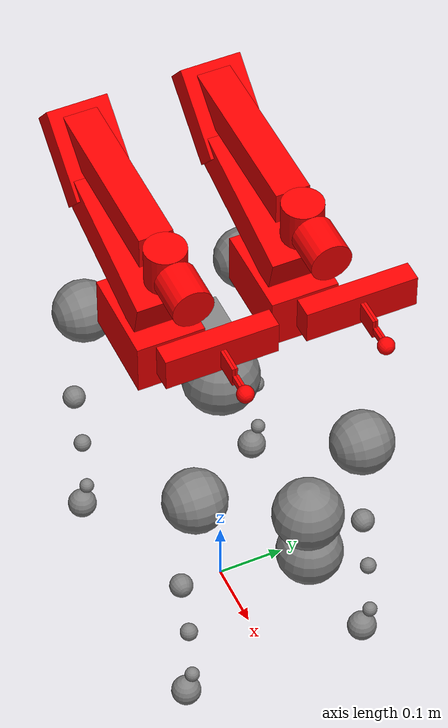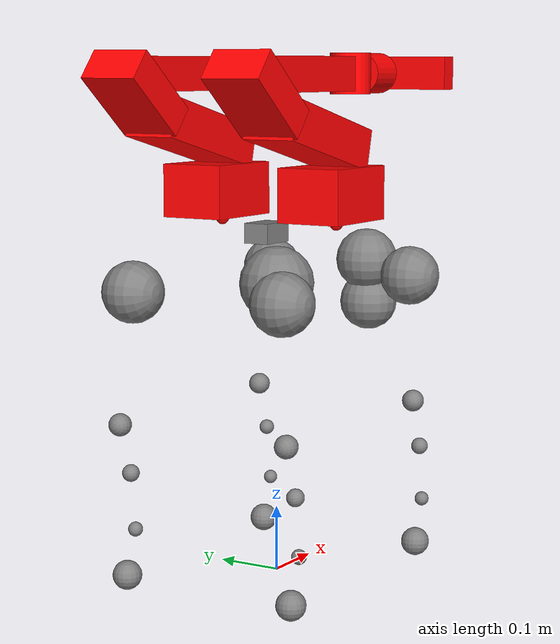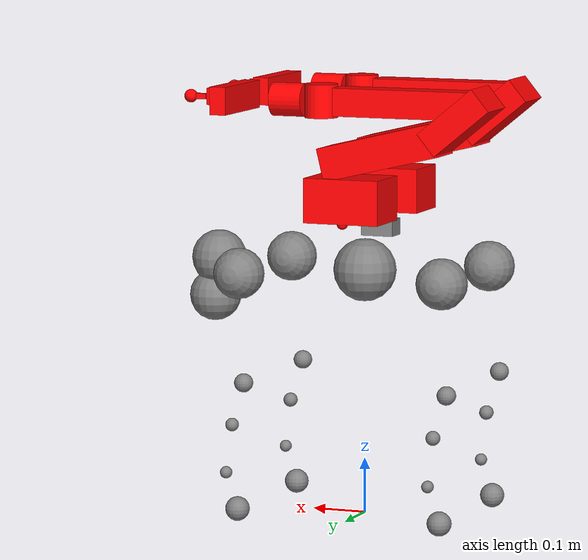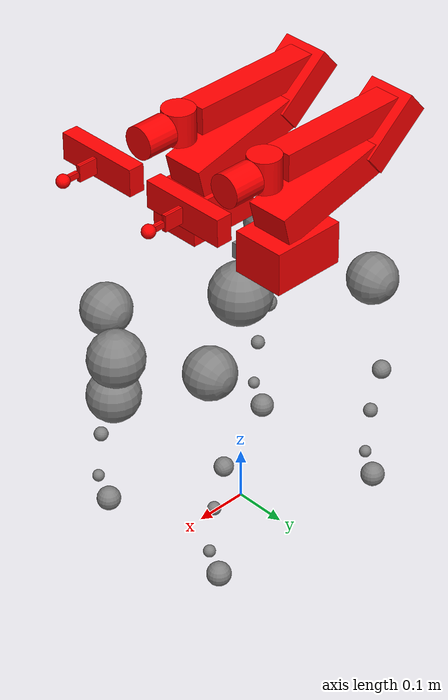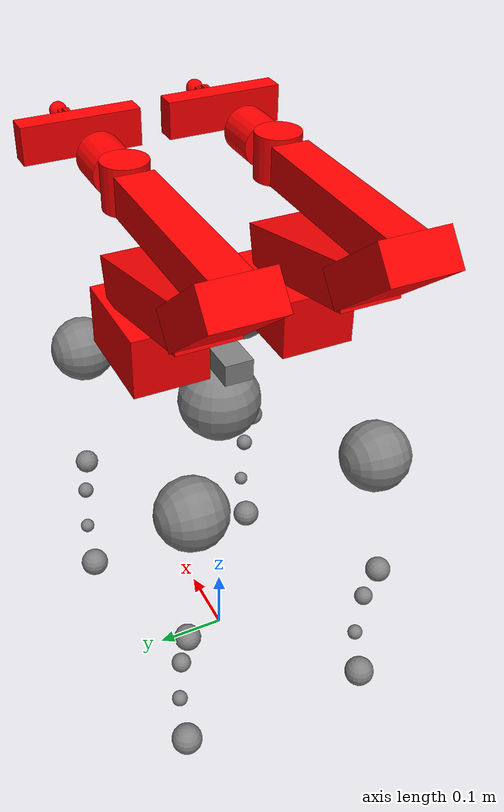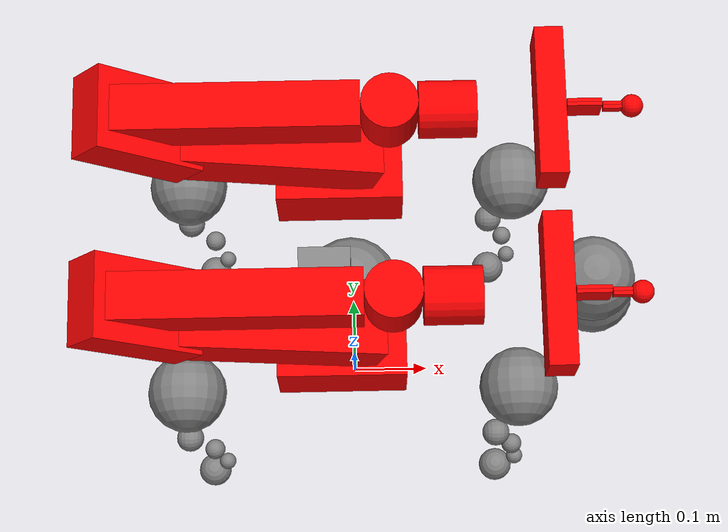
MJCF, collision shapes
<mujoco model="go2_dual_arm">
  <compiler angle="radian" meshdir="." autolimits="true" />

  <!-- 求解器solver:默认牛顿 -->
  <option iterations="1" ls_iterations="5" timestep="0.004" integrator="Euler">
    <flag eulerdamp="disable" />
  </option>

  <custom>
    <numeric data="50" name="max_contact_points" />
    <numeric data="24" name="max_geom_pairs" />
  </custom>

  <default>
    <default class="obj_visual">
      <geom group="2" type="mesh" contype="0" conaffinity="0" />
    </default>
    <default class="obj_collision">
      <geom group="3" contype="1" conaffinity="1" />
    </default>

    <default class="airbot_play">
      <joint axis="0 0 1" armature="0.01" damping="1" frictionloss="5" />
      <position inheritrange="1" kp="35" forcerange="-18 18" />
      <default class="joint1">
        <joint range="-3.1416 2.0944" actuatorfrcrange="-24 24" damping="0.2" frictionloss="1" />
      </default>
      <default class="joint2">
        <joint range="-2.9671 0.17453" actuatorfrcrange="-24 24" damping="0.2" frictionloss="1" />
      </default>
      <default class="joint3">
        <joint range="-0.087266 3.1416" actuatorfrcrange="-24 24" damping="0.2" frictionloss="1" />
      </default>
      <default class="joint4">
        <joint range="-3.0107 3.0107" actuatorfrcrange="-8 8" damping="0.1" frictionloss="0.5" />
        <position forcerange="-8 8" />
      </default>
      <default class="joint5">
        <joint range="-1.7628 1.7628" actuatorfrcrange="-8 8" damping="0.1" frictionloss="0.5" />
        <position forcerange="-8 8" />
      </default>
      <default class="joint6">
        <joint range="-3.0107 3.0107" actuatorfrcrange="-8 8" damping="0.1" frictionloss="0.5" />
        <position forcerange="-8 8" />
      </default>
    </default>

    <default class="go2">
      <geom friction="0.6" margin="0.001" condim="1" />
      <joint axis="0 1 0" damping="0.5" armature="0.01" frictionloss="0.2" />
      <general forcerange="-24 24" biastype="affine" gainprm="50 0 0" biasprm="0 -50 -0.5" />

      <default class="abduction">
        <joint axis="1 0 0" range="-1.0472 1.0472" />
        <general ctrlrange="-0.9472 0.9472" />
      </default>
      <default class="hip">
        <joint range="-1.5708 3.4907" />
        <general ctrlrange="-1.4 2.5" />
      </default>
      <default class="knee">
        <joint range="-2.7227 -0.83776" />
        <general ctrlrange="-2.6227 -0.84776" />
      </default>
      <default class="visual">
        <geom type="mesh" contype="0" conaffinity="0" group="2" />
      </default>
      <default class="go2foot">
        <site pos="0 0 -0.213" type="sphere" size="0.023" group="5" />
        <geom rgba="0.231373 0.380392 0.705882 1" />
      </default>
      <default class="collision">
        <geom group="3" />
        <default class="foot">
          <geom size="0.022" pos="-0.002 0 -0.213" priority="1" solimp="0.015 1 0.022" condim="6" friction="0.8 0.02 0.01" />
        </default>
      </default>
    </default>
  </default>

  <asset>
    <material name="metal" rgba=".9 .95 .95 1" />
    <material name="black" rgba="0 0 0 1" />
    <material name="white" rgba="1 1 1 1" />
    <material name="gray" rgba="0.671705 0.692426 0.774270 1" />
    <material name="Paint_Matte_Black" specular="0.5" shininess="0.5" rgba="0.00111266039 0.00111266039 0.00111266039 1.0" />
    <material name="Paint_Metallic_Cool_Grey" specular="0.5" shininess="0.5" rgba="0.928523183 0.928523183 0.928523123 1.0" />
    <material name="Paint_Metallic_White" specular="0.5" shininess="0.5" rgba="0.928523183 0.928523183 0.928523123 1.0" />
    <material name="Gree_Light_Base" specular="0.5" shininess="0.5" rgba="0.6 1 1 1" />
    <material name="default_material" rgba="0.7 0.7 0.7 1" />
    <mesh name="arm_base_0" file="assets/arm_base_0.obj" />
    <mesh name="arm_base_1" file="assets/arm_base_1.obj" />
    <mesh name="link1" file="assets/link1.obj" />
    <mesh name="link2_0" file="assets/link2_0.obj" />
    <mesh name="link2_1" file="assets/link2_1.obj" />
    <mesh name="link3_0" file="assets/link3_0.obj" />
    <mesh name="link3_1" file="assets/link3_1.obj" />
    <mesh name="link4" file="assets/link4.obj" />
    <mesh name="link5_0" file="assets/link5_0.obj" />
    <mesh name="link5_1" file="assets/link5_1.obj" />
    <mesh name="link6" file="assets/link6.obj" />
    <mesh name="left" file="assets/left.obj" />
    <mesh name="right" file="assets/right.obj" />
    <mesh file="assets/slider_base_link_0.STL" />
    <mesh name="base_link_base_link" file="assets/new_base_link.STL" />

    <mesh name="base_0" file="../go2/assets/base_0.obj" />
    <mesh name="base_1" file="../go2/assets/base_1.obj" />
    <mesh name="base_2" file="../go2/assets/base_2.obj" />
    <mesh name="base_3" file="../go2/assets/base_3.obj" />
    <mesh name="base_4" file="../go2/assets/base_4.obj" />
    <mesh name="hip_0" file="../go2/assets/hip_0.obj" />
    <mesh name="hip_1" file="../go2/assets/hip_1.obj" />
    <mesh name="thigh_0" file="../go2/assets/thigh_0.obj" />
    <mesh name="thigh_1" file="../go2/assets/thigh_1.obj" />
    <mesh name="thigh_mirror_0" file="../go2/assets/thigh_mirror_0.obj" />
    <mesh name="thigh_mirror_1" file="../go2/assets/thigh_mirror_1.obj" />
    <mesh name="calf_0" file="../go2/assets/calf_0.obj" />
    <mesh name="calf_1" file="../go2/assets/calf_1.obj" />
    <mesh name="calf_mirror_0" file="../go2/assets/calf_mirror_0.obj" />
    <mesh name="calf_mirror_1" file="../go2/assets/calf_mirror_1.obj" />
    <mesh name="foot" file="../go2/assets/foot.obj" />
  </asset>

  <worldbody>
    <body name="base" pos="0 0 0.445" childclass="go2">
      <camera name="track" pos="0.846 -1.465 0.916" xyaxes="0.866 0.500 0.000 -0.171 0.296 0.940" mode="trackcom" />
      <inertial pos="0.021112 0 -0.005366" quat="-0.000543471 0.713435 -0.00173769 0.700719" mass="6.921" diaginertia="0.107027 0.0980771 0.0244531" />
      <freejoint />
      <geom mesh="base_0" material="black" class="visual" />
      <geom mesh="base_1" material="black" class="visual" />
      <geom mesh="base_2" material="black" class="visual" />
      <geom mesh="base_3" material="white" class="visual" />
      <geom mesh="base_4" material="gray" class="visual" />
      <geom name="base1" size="0.057 0.04675 0.057" class="collision" />
      <geom name="base2" size="0.05 0.045" pos="0.285 0 0.01" class="collision" />
      <geom name="base3" size="0.047" pos="0.293 0 -0.06" class="collision" />
      <site name="base_site" />
      <site name="imu" pos="-0.02557 0 0.04232" />
      <body name="slider_base_link" pos="-0.03 0 0.08">
        <inertial pos="-0.000148259796543093 5.14853659705494E-10 0.000282430035707958" mass="0.0789580723155737" diaginertia="2.26581866682277e-06 0.000187384565036367 0.000188161998720563" />
        <geom type="box" size="0.03 0.02 0.015" class="collision" />
        <geom mesh="slider_base_link_0" material="gray" class="visual" />
      </body>
      <body name="FL_hip" pos="0.1934 0.0465 0">
        <inertial pos="-0.0054 0.00194 -0.000105" quat="0.497014 0.499245 0.505462 0.498237" mass="0.678" diaginertia="0.00088403 0.000596003 0.000479967" />
        <joint name="FL_hip_joint" class="abduction" />
        <geom mesh="hip_0" material="metal" class="visual" />
        <geom mesh="hip_1" material="gray" class="visual" />
        <geom name="fl_hip_0" size="0.046 0.02" pos="0 0.08 0" quat="1 1 0 0" class="collision" />
        <body name="FL_thigh" pos="0 0.0955 0">
          <inertial pos="-0.00374 -0.0223 -0.0327" quat="0.829533 0.0847635 -0.0200632 0.551623" mass="1.152" diaginertia="0.00594973 0.00584149 0.000878787" />
          <joint name="FL_thigh_joint" class="hip" />
          <geom mesh="thigh_0" material="metal" class="visual" />
          <geom mesh="thigh_1" material="gray" class="visual" />
          <geom name="fl_thigh_0" size="0.017 0.01225 0.017" pos="-0.015 0 -0.1955" quat="0.707107 0 0.707107 0" class="collision" />
          <body name="FL_calf" pos="0 0 -0.213">
            <inertial pos="0.00629595 -0.000622121 -0.141417" quat="0.710672 0.00154099 -0.00450087 0.703508" mass="0.241352" diaginertia="0.0014901 0.00146356 5.31397e-05" />
            <joint name="FL_calf_joint" class="knee" />
            <geom mesh="calf_0" material="gray" class="visual" />
            <geom mesh="calf_1" material="black" class="visual" />
            <geom name="fl_calf_0" size="0.012 0.06" pos="0.008 0 -0.06" quat="0.994493 0 -0.104807 0" class="collision" />
            <geom name="fl_calf_1" size="0.011 0.0325" pos="0.02 0 -0.148" quat="0.999688 0 0.0249974 0" class="collision" />
            <geom pos="0 0 -0.213" mesh="foot" class="visual" material="black" />
            <geom name="FL" class="foot" />
            <site name="FL" class="go2foot" />
          </body>
        </body>
      </body>
      <body name="FR_hip" pos="0.1934 -0.0465 0">
        <inertial pos="-0.0054 -0.00194 -0.000105" quat="0.498237 0.505462 0.499245 0.497014" mass="0.678" diaginertia="0.00088403 0.000596003 0.000479967" />
        <joint name="FR_hip_joint" class="abduction" />
        <geom mesh="hip_0" material="metal" class="visual" quat="4.63268e-05 1 0 0" />
        <geom mesh="hip_1" material="gray" class="visual" quat="4.63268e-05 1 0 0" />
        <geom name="fr_hip_0" size="0.046 0.02" pos="0 -0.08 0" quat="0.707107 0.707107 0 0" class="collision" />
        <body name="FR_thigh" pos="0 -0.0955 0">
          <inertial pos="-0.00374 0.0223 -0.0327" quat="0.551623 -0.0200632 0.0847635 0.829533" mass="1.152" diaginertia="0.00594973 0.00584149 0.000878787" />
          <joint name="FR_thigh_joint" class="hip" />
          <geom mesh="thigh_mirror_0" material="metal" class="visual" />
          <geom mesh="thigh_mirror_1" material="gray" class="visual" />
          <geom name="fr_thigh_0" size="0.017 0.01225 0.017" pos="-0.015 0 -0.1955" quat="0.707107 0 0.707107 0" class="collision" />
          <body name="FR_calf" pos="0 0 -0.213">
            <inertial pos="0.00629595 0.000622121 -0.141417" quat="0.703508 -0.00450087 0.00154099 0.710672" mass="0.241352" diaginertia="0.0014901 0.00146356 5.31397e-05" />
            <joint name="FR_calf_joint" class="knee" />
            <geom mesh="calf_mirror_0" material="gray" class="visual" />
            <geom mesh="calf_mirror_1" material="black" class="visual" />
            <geom name="fr_calf_0" size="0.013 0.06" pos="0.01 0 -0.06" quat="0.995004 0 -0.0998334 0" class="collision" />
            <geom name="fr_calf_1" size="0.011 0.0325" pos="0.02 0 -0.148" quat="0.999688 0 0.0249974 0" class="collision" />
            <geom pos="0 0 -0.213" mesh="foot" class="visual" material="black" />
            <geom name="FR" class="foot" />
            <site name="FR" class="go2foot" />
          </body>
        </body>
      </body>
      <body name="RL_hip" pos="-0.1934 0.0465 0">
        <inertial pos="0.0054 0.00194 -0.000105" quat="0.505462 0.498237 0.497014 0.499245" mass="0.678" diaginertia="0.00088403 0.000596003 0.000479967" />
        <joint name="RL_hip_joint" class="abduction" />
        <geom mesh="hip_0" material="metal" class="visual" quat="4.63268e-05 0 1 0" />
        <geom mesh="hip_1" material="gray" class="visual" quat="4.63268e-05 0 1 0" />
        <geom name="rl_hip_0" size="0.046 0.02" pos="0 0.08 0" quat="0.707107 0.707107 0 0" class="collision" />
        <body name="RL_thigh" pos="0 0.0955 0">
          <inertial pos="-0.00374 -0.0223 -0.0327" quat="0.829533 0.0847635 -0.0200632 0.551623" mass="1.152" diaginertia="0.00594973 0.00584149 0.000878787" />
          <joint name="RL_thigh_joint" class="hip" />
          <geom mesh="thigh_0" material="metal" class="visual" />
          <geom mesh="thigh_1" material="gray" class="visual" />
          <geom name="rl_thigh_0" size="0.017 0.01225 0.017" pos="-0.015 0 -0.1955" quat="0.707107 0 0.707107 0" class="collision" />
          <body name="RL_calf" pos="0 0 -0.213">
            <inertial pos="0.00629595 -0.000622121 -0.141417" quat="0.710672 0.00154099 -0.00450087 0.703508" mass="0.241352" diaginertia="0.0014901 0.00146356 5.31397e-05" />
            <joint name="RL_calf_joint" class="knee" />
            <geom mesh="calf_0" material="gray" class="visual" />
            <geom mesh="calf_1" material="black" class="visual" />
            <geom name="rl_calf_0" size="0.013 0.06" pos="0.01 0 -0.06" quat="0.995004 0 -0.0998334 0" class="collision" />
            <geom name="rl_calf_1" size="0.011 0.0325" pos="0.02 0 -0.148" quat="0.999688 0 0.0249974 0" class="collision" />
            <geom pos="0 0 -0.213" mesh="foot" class="visual" material="black" />
            <geom name="RL" class="foot" />
            <site name="RL" class="go2foot" />
          </body>
        </body>
      </body>
      <body name="RR_hip" pos="-0.1934 -0.0465 0">
        <inertial pos="0.0054 -0.00194 -0.000105" quat="0.499245 0.497014 0.498237 0.505462" mass="0.678" diaginertia="0.00088403 0.000596003 0.000479967" />
        <joint name="RR_hip_joint" class="abduction" />
        <geom mesh="hip_0" material="metal" class="visual" quat="2.14617e-09 4.63268e-05 4.63268e-05 -1" />
        <geom mesh="hip_1" material="gray" class="visual" quat="2.14617e-09 4.63268e-05 4.63268e-05 -1" />
        <geom name="rr_hip_0" size="0.046 0.02" pos="0 -0.08 0" quat="0.707107 0.707107 0 0" class="collision" />
        <body name="RR_thigh" pos="0 -0.0955 0">
          <inertial pos="-0.00374 0.0223 -0.0327" quat="0.551623 -0.0200632 0.0847635 0.829533" mass="1.152" diaginertia="0.00594973 0.00584149 0.000878787" />
          <joint name="RR_thigh_joint" class="hip" />
          <geom mesh="thigh_mirror_0" material="metal" class="visual" />
          <geom mesh="thigh_mirror_1" material="gray" class="visual" />
          <geom name="rr_thigh_0" size="0.017 0.01225 0.017" pos="-0.015 0 -0.1955" quat="0.707107 0 0.707107 0" class="collision" />
          <body name="RR_calf" pos="0 0 -0.213">
            <inertial pos="0.00629595 0.000622121 -0.141417" quat="0.703508 -0.00450087 0.00154099 0.710672" mass="0.241352" diaginertia="0.0014901 0.00146356 5.31397e-05" />
            <joint name="RR_calf_joint" class="knee" />
            <geom mesh="calf_mirror_0" material="gray" class="visual" />
            <geom mesh="calf_mirror_1" material="black" class="visual" />
            <geom name="rr_calf_0" size="0.013 0.06" pos="0.01 0 -0.06" quat="0.995004 0 -0.0998334 0" class="collision" />
            <geom name="rr_calf_1" size="0.011 0.0325" pos="0.02 0 -0.148" quat="0.999688 0 0.0249974 0" class="collision" />
            <geom pos="0 0 -0.213" mesh="foot" class="visual" material="black" />
            <geom name="RR" class="foot" />
            <site name="RR" class="go2foot" />
          </body>
        </body>
      </body>

      <!-- ======= AIRBOT PLAY ======= -->
      <body name="left_arm_base_on_go2" pos="0.0045 0.10 0.0945">
        <body name="left_arm_base" childclass="airbot_play">
          <site name="left_armbasepoint" pos="0 0 0" euler="0 0 0" size="0.01" type="sphere" rgba="1 0 0 1" />
          <inertial pos="-0.0262913514073823 -0.0151414731978384 0.0260741549397302" mass="0.735520547128483" diaginertia="0.000798907222818606 0.000995609340418481 0.001483737681037" />
          <geom name="left_base_link_collision" type="box" pos="-0.015 0 0.045" size="0.07 0.05 0.04" rgba="1 0 0 0.5" class="obj_collision" />
          <geom name="left_base_link_visual" type="mesh" mesh="base_link_base_link" material="Paint_Matte_Black" class="obj_visual" />
          <site name="left_touch_site_base" pos="-0.015 0 0.045" size="0.001" type="sphere" group="3" />
          <body name="left_link1" pos="0 0 0.1172">
            <inertial pos="7.9126e-05 -0.002527 -0.0041359" quat="0.696716 0.716558 0.0238919 -0.0236876" mass="0.54639" diaginertia="0.000346294 0.000325437 0.000286269" />
            <joint name="left_joint1" class="joint1" />
            <geom name="left_link1_visual" type="mesh" mesh="link1" material="Paint_Matte_Black" class="obj_visual" />
            <site name="left_touch_site_link1" pos="0 0 0" size="0.001" type="sphere" group="3" />
            <body name="left_link2" quat="0.135866 0.135867 -0.69393 0.693932">
              <inertial pos="0.22493 0.0047721 0.008023" quat="-0.210875 0.632473 -0.273056 0.693506" mass="0.64621" diaginertia="0.00516535 0.00505042 0.000418626" />
              <joint name="left_joint2" class="joint2" />
              <geom name="left_link2_collision1" type="box" pos="0.08 0.015 0" euler="0 0 0.15" size="0.11 0.03 0.04" rgba="1 0 0 0.5" class="obj_collision" />
              <geom name="left_link2_collision2" type="box" pos="0.235 0.015 0" euler="0 0 -0.3" size="0.065 0.025 0.045" rgba="1 0 0 0.5" class="obj_collision" />
              <geom name="left_link2_0_visual" type="mesh" mesh="link2_0" material="Paint_Matte_Black" class="obj_visual" />
              <geom name="left_link2_1_visual" type="mesh" mesh="link2_1" material="Paint_Metallic_White" class="obj_visual" />
              <site name="left_touch_site_link2" pos="0.15 0 0" size="0.001" type="sphere" group="3" />
              <body name="left_link3" pos="0.27009 0 0" quat="0.192144 0 0 -0.981367">
                <inertial pos="0.16813 -5.5576e-05 0.0031184" quat="0.511278 0.488423 0.489191 0.510617" mass="0.26829" diaginertia="0.0031527 0.0030951 0.000239403" />
                <joint name="left_joint3" class="joint3" />
                <geom name="left_link3_collision" type="box" pos="0.13 0 0" size="0.13 0.025 0.025" rgba="1 0 0 0.5" class="obj_collision" />
                <geom name="left_link3_0_visual" type="mesh" mesh="link3_0" material="Paint_Matte_Black" class="obj_visual" />
                <geom name="left_link3_1_visual" type="mesh" mesh="link3_1" material="Paint_Metallic_White" class="obj_visual" />
                <site name="left_touch_site_link3" pos="0.13 0 0" size="0.001" type="sphere" group="3" />
                <body name="left_link4" pos="0.29015 0 0" quat="-2.59734e-06 0.707105 2.59735e-06 0.707108">
                  <inertial pos="5.2436e-06 0.00040412 -0.03228" quat="0.999969 -0.000174762 -0.00792041 -6.98144e-05" mass="0.34876" diaginertia="0.000423574 0.000412 0.000126826" />
                  <joint name="left_joint4" class="joint4" />
                  <geom name="left_link4_visual" type="mesh" mesh="link4" material="Paint_Matte_Black" class="obj_visual" />
                  <geom name="left_link4_collision" type="cylinder" pos="0 0 0" euler="1.5708 0 0" size="0.03 0.03" rgba="1 0 0 0.5" class="obj_collision" />
                  <site name="left_touch_site_link4" pos="0 0 0" size="0.001" type="sphere" group="3" />
                  <body name="left_link5" quat="0.707105 0.707108 0 0">
                    <inertial pos="8.3328e-06 0.026148 0.002525" quat="0.531568 0.4663 0.4663 0.531568" mass="0.36132" diaginertia="0.0004677 0.000432922 0.000178178" />
                    <joint name="left_joint5" class="joint5" />
                    <geom name="left_link5_0_visual" type="mesh" mesh="link5_0" material="Paint_Matte_Black" class="obj_visual" />
                    <geom name="left_link5_1_visual" type="mesh" mesh="link5_1" material="Paint_Metallic_White" class="obj_visual" />
                    <geom name="left_link5_collision" type="cylinder" pos="0 0.06 0" euler="1.5708 0 0" size="0.03 0.03" rgba="1 0 0 0.5" class="obj_collision" />
                    <site name="left_touch_site_link5" pos="0 0.06 0" size="0.001" type="sphere" group="3" />
                    <body name="left_link6" pos="0 0.23645 0" quat="0.499998 -0.5 0.5 0.500002">
                      <body pos="-0.105 0 -0.12" euler="3.1416 0 1.5708">
                        <camera name="left_eye_arm" mode="fixed" euler="-0.5236 0 0" fovy="72.5376526571421" />
                      </body>
                      <inertial pos="-0.0047053 7.3857e-05 -0.12293" mass="0.53855" diaginertia="5e-05 5e-05 3.85e-05" />
                      <joint name="left_joint6" class="joint6" />
                      <geom name="left_link6_collision" type="box" pos="0 0 -0.07" size="0.025 0.08 0.015" rgba="1 0 0 0.5" class="obj_collision" />
                      <geom name="left_link6_visual" type="mesh" mesh="link6" material="Paint_Matte_Black" class="obj_visual" />
                      <site name="left_endpoint" pos="0 0 0.015" euler="0 -1.5708 0" size="0.01" type="sphere" rgba="0 1 0 1" />
                      <site name="left_touch_site_link6" pos="0 0 -0.07" size="0.001" type="sphere" group="3" />
                      <body name="left_eef_connect_base_link">
                        <geom name="left_eef_collision" type="sphere" size=".012" pos="0 0 0.015" rgba="1 0 0 0.5" class="obj_collision" />
                        <site name="left_touch_site_eef" pos="0 0 0.015" size="0.001" type="sphere" group="3" />
                        <body name="left_g2_base_link">
                          <geom name="left_g2_base_link_collision" type="box" pos="0 0 -0.07" size="0.025 0.08 0.015" rgba="1 0 0 0.5" class="obj_collision" />
                          <site name="left_touch_site_g2base" pos="0 0 -0.07" size="0.001" type="sphere" group="3" />
                          <body name="left_g2_left_link">
                            <inertial pos="-0.048742 0.0096369 0.00044322" quat="0.757393 0.0415116 0.0313705 0.650883" mass="0.0626" diaginertia="2.79281e-05 1.90181e-05 1.21737e-05" />
                            <geom name="left_g2_left_link_visual" type="mesh" mesh="right" material="Paint_Matte_Black" class="obj_visual" />
                            <geom name="left_g2_left_finger_pad" type="box" size=".00525 .002 .02" pos="0 0.002 0.005" rgba="1 0 0 0.5" class="obj_collision" />
                            <geom name="left_g2_left_finger_collision" type="box" size=".015 .002 .018" pos="0 0.002 -0.035" rgba="1 0 0 0.5" class="obj_collision" />
                          </body>
                          <body name="left_g2_right_link">
                            <inertial pos="-0.049039 -0.0096764 0.00038868" quat="0.650491 0.0296695 0.0398251 0.757889" mass="0.061803" diaginertia="2.74809e-05 1.88104e-05 1.19127e-05" />
                            <geom name="left_g2_right_link_visual" type="mesh" mesh="left" material="Paint_Matte_Black" class="obj_visual" />
                            <geom name="left_g2_right_finger_pad" type="box" size=".00525 .002 .02" pos="0 -0.002 0.005" rgba="1 0 0 0.5" class="obj_collision" />
                            <geom name="left_g2_right_finger_collision" type="box" size=".015 .002 .018" pos="0 -0.002 -0.035" rgba="1 0 0 0.5" class="obj_collision" />
                          </body>
                        </body>
                      </body>
                    </body>
                  </body>
                </body>
              </body>
            </body>
          </body>
        </body>
      </body>
    <body name="right_arm_base_on_go2" pos="0.0045 -0.10 0.0945">
        <body name="right_arm_base" childclass="airbot_play">
          <site name="right_armbasepoint" pos="0 0 0" euler="0 0 0" size="0.01" type="sphere" rgba="1 0 0 1" />
          <inertial pos="-0.0262913514073823 -0.0151414731978384 0.0260741549397302" mass="0.735520547128483" diaginertia="0.000798907222818606 0.000995609340418481 0.001483737681037" />
          <geom name="right_base_link_collision" type="box" pos="-0.015 0 0.045" size="0.07 0.05 0.04" rgba="1 0 0 0.5" class="obj_collision" />
          <geom name="right_base_link_visual" type="mesh" mesh="base_link_base_link" material="Paint_Matte_Black" class="obj_visual" />
          <site name="right_touch_site_base" pos="-0.015 0 0.045" size="0.001" type="sphere" group="3" />
          <body name="right_link1" pos="0 0 0.1172">
            <inertial pos="7.9126e-05 -0.002527 -0.0041359" quat="0.696716 0.716558 0.0238919 -0.0236876" mass="0.54639" diaginertia="0.000346294 0.000325437 0.000286269" />
            <joint name="right_joint1" class="joint1" />
            <geom name="right_link1_visual" type="mesh" mesh="link1" material="Paint_Matte_Black" class="obj_visual" />
            <site name="right_touch_site_link1" pos="0 0 0" size="0.001" type="sphere" group="3" />
            <body name="right_link2" quat="0.135866 0.135867 -0.69393 0.693932">
              <inertial pos="0.22493 0.0047721 0.008023" quat="-0.210875 0.632473 -0.273056 0.693506" mass="0.64621" diaginertia="0.00516535 0.00505042 0.000418626" />
              <joint name="right_joint2" class="joint2" />
              <geom name="right_link2_collision1" type="box" pos="0.08 0.015 0" euler="0 0 0.15" size="0.11 0.03 0.04" rgba="1 0 0 0.5" class="obj_collision" />
              <geom name="right_link2_collision2" type="box" pos="0.235 0.015 0" euler="0 0 -0.3" size="0.065 0.025 0.045" rgba="1 0 0 0.5" class="obj_collision" />
              <geom name="right_link2_0_visual" type="mesh" mesh="link2_0" material="Paint_Matte_Black" class="obj_visual" />
              <geom name="right_link2_1_visual" type="mesh" mesh="link2_1" material="Paint_Metallic_White" class="obj_visual" />
              <site name="right_touch_site_link2" pos="0.15 0 0" size="0.001" type="sphere" group="3" />
              <body name="right_link3" pos="0.27009 0 0" quat="0.192144 0 0 -0.981367">
                <inertial pos="0.16813 -5.5576e-05 0.0031184" quat="0.511278 0.488423 0.489191 0.510617" mass="0.26829" diaginertia="0.0031527 0.0030951 0.000239403" />
                <joint name="right_joint3" class="joint3" />
                <geom name="right_link3_collision" type="box" pos="0.13 0 0" size="0.13 0.025 0.025" rgba="1 0 0 0.5" class="obj_collision" />
                <geom name="right_link3_0_visual" type="mesh" mesh="link3_0" material="Paint_Matte_Black" class="obj_visual" />
                <geom name="right_link3_1_visual" type="mesh" mesh="link3_1" material="Paint_Metallic_White" class="obj_visual" />
                <site name="right_touch_site_link3" pos="0.13 0 0" size="0.001" type="sphere" group="3" />
                <body name="right_link4" pos="0.29015 0 0" quat="-2.59734e-06 0.707105 2.59735e-06 0.707108">
                  <inertial pos="5.2436e-06 0.00040412 -0.03228" quat="0.999969 -0.000174762 -0.00792041 -6.98144e-05" mass="0.34876" diaginertia="0.000423574 0.000412 0.000126826" />
                  <joint name="right_joint4" class="joint4" />
                  <geom name="right_link4_visual" type="mesh" mesh="link4" material="Paint_Matte_Black" class="obj_visual" />
                  <geom name="right_link4_collision" type="cylinder" pos="0 0 0" euler="1.5708 0 0" size="0.03 0.03" rgba="1 0 0 0.5" class="obj_collision" />
                  <site name="right_touch_site_link4" pos="0 0 0" size="0.001" type="sphere" group="3" />
                  <body name="right_link5" quat="0.707105 0.707108 0 0">
                    <inertial pos="8.3328e-06 0.026148 0.002525" quat="0.531568 0.4663 0.4663 0.531568" mass="0.36132" diaginertia="0.0004677 0.000432922 0.000178178" />
                    <joint name="right_joint5" class="joint5" />
                    <geom name="right_link5_0_visual" type="mesh" mesh="link5_0" material="Paint_Matte_Black" class="obj_visual" />
                    <geom name="right_link5_1_visual" type="mesh" mesh="link5_1" material="Paint_Metallic_White" class="obj_visual" />
                    <geom name="right_link5_collision" type="cylinder" pos="0 0.06 0" euler="1.5708 0 0" size="0.03 0.03" rgba="1 0 0 0.5" class="obj_collision" />
                    <site name="right_touch_site_link5" pos="0 0.06 0" size="0.001" type="sphere" group="3" />
                    <body name="right_link6" pos="0 0.23645 0" quat="0.499998 -0.5 0.5 0.500002">
                      <body pos="-0.105 0 -0.12" euler="3.1416 0 1.5708">
                        <camera name="right_eye_arm" mode="fixed" euler="-0.5236 0 0" fovy="72.5376526571421" />
                      </body>
                      <inertial pos="-0.0047053 7.3857e-05 -0.12293" mass="0.53855" diaginertia="5e-05 5e-05 3.85e-05" />
                      <joint name="right_joint6" class="joint6" />
                      <geom name="right_link6_collision" type="box" pos="0 0 -0.07" size="0.025 0.08 0.015" rgba="1 0 0 0.5" class="obj_collision" />
                      <geom name="right_link6_visual" type="mesh" mesh="link6" material="Paint_Matte_Black" class="obj_visual" />
                      <site name="right_endpoint" pos="0 0 0.015" euler="0 -1.5708 0" size="0.01" type="sphere" rgba="0 1 0 1" />
                      <site name="right_touch_site_link6" pos="0 0 -0.07" size="0.001" type="sphere" group="3" />
                      <body name="right_eef_connect_base_link">
                        <geom name="right_eef_collision" type="sphere" size=".012" pos="0 0 0.015" rgba="1 0 0 0.5" class="obj_collision" />
                        <site name="right_touch_site_eef" pos="0 0 0.015" size="0.001" type="sphere" group="3" />
                        <body name="right_g2_base_link">
                          <geom name="right_g2_base_link_collision" type="box" pos="0 0 -0.07" size="0.025 0.08 0.015" rgba="1 0 0 0.5" class="obj_collision" />
                          <site name="right_touch_site_g2base" pos="0 0 -0.07" size="0.001" type="sphere" group="3" />
                          <body name="right_g2_left_link">
                            <inertial pos="-0.048742 0.0096369 0.00044322" quat="0.757393 0.0415116 0.0313705 0.650883" mass="0.0626" diaginertia="2.79281e-05 1.90181e-05 1.21737e-05" />
                            <geom name="right_g2_left_link_visual" type="mesh" mesh="right" material="Paint_Matte_Black" class="obj_visual" />
                            <geom name="right_g2_left_finger_pad" type="box" size=".00525 .002 .02" pos="0 0.002 0.005" rgba="1 0 0 0.5" class="obj_collision" />
                            <geom name="right_g2_left_finger_collision" type="box" size=".015 .002 .018" pos="0 0.002 -0.035" rgba="1 0 0 0.5" class="obj_collision" />
                          </body>
                          <body name="right_g2_right_link">
                            <inertial pos="-0.049039 -0.0096764 0.00038868" quat="0.650491 0.0296695 0.0398251 0.757889" mass="0.061803" diaginertia="2.74809e-05 1.88104e-05 1.19127e-05" />
                            <geom name="right_g2_right_link_visual" type="mesh" mesh="left" material="Paint_Matte_Black" class="obj_visual" />
                            <geom name="right_g2_right_finger_pad" type="box" size=".00525 .002 .02" pos="0 -0.002 0.005" rgba="1 0 0 0.5" class="obj_collision" />
                            <geom name="right_g2_right_finger_collision" type="box" size=".015 .002 .018" pos="0 -0.002 -0.035" rgba="1 0 0 0.5" class="obj_collision" />
                          </body>
                        </body>
                      </body>
                    </body>
                  </body>
                </body>
              </body>
            </body>
          </body>
        </body>
      </body>
    </body>

<!--        &lt;!&ndash; 可视化目标小球 &ndash;&gt;-->
<!--          type="sphere"-->
<!--          size="0.03"-->
<!--          rgba="1 0 0 0.6"-->
<!--          contype="0"-->
<!--          conaffinity="0"-->
<!--          mass="0.001"-->
<!--          solimp="0.9 0.95 0.001"-->
  </worldbody>

  <contact>
    <exclude body1="left_arm_base" body2="left_link2" />
    <exclude body1="right_arm_base" body2="right_link2" />
    <exclude body1="left_arm_base" body2="left_link1" />
    <exclude body1="right_arm_base" body2="right_link1" />
    <exclude body1="left_link1" body2="left_link2" />
    <exclude body1="right_link1" body2="right_link2" />
    <exclude body1="left_link2" body2="left_link3" />
    <exclude body1="right_link2" body2="right_link3" />
    <exclude body1="left_link3" body2="left_link4" />
    <exclude body1="right_link3" body2="right_link4" />
    <exclude body1="left_link4" body2="left_link5" />
    <exclude body1="right_link4" body2="right_link5" />
    <exclude body1="left_link5" body2="left_link6" />
    <exclude body1="right_link5" body2="right_link6" />
    <exclude body1="left_link6" body2="left_eef_connect_base_link" />
    <exclude body1="right_link6" body2="right_eef_connect_base_link" />
    <exclude body1="left_eef_connect_base_link" body2="left_g2_base_link" />
    <exclude body1="right_eef_connect_base_link" body2="right_g2_base_link" />
    <exclude body1="left_g2_base_link" body2="left_g2_left_link" />
    <exclude body1="right_g2_base_link" body2="right_g2_left_link" />
    <exclude body1="left_g2_base_link" body2="left_g2_right_link" />
  <exclude body1="right_g2_base_link" body2="right_g2_right_link" />
  </contact>

  <actuator>
    <general class="abduction" name="FL_hip" joint="FL_hip_joint" />
    <general class="hip" name="FL_thigh" joint="FL_thigh_joint" />
    <general class="knee" name="FL_calf" joint="FL_calf_joint" />
    <general class="abduction" name="FR_hip" joint="FR_hip_joint" />
    <general class="hip" name="FR_thigh" joint="FR_thigh_joint" />
    <general class="knee" name="FR_calf" joint="FR_calf_joint" />
    <general class="abduction" name="RL_hip" joint="RL_hip_joint" />
    <general class="hip" name="RL_thigh" joint="RL_thigh_joint" />
    <general class="knee" name="RL_calf" joint="RL_calf_joint" />
    <general class="abduction" name="RR_hip" joint="RR_hip_joint" />
    <general class="hip" name="RR_thigh" joint="RR_thigh_joint" />
    <general class="knee" name="RR_calf" joint="RR_calf_joint" />
    <!-- Airbot Play actuators -->
    <!-- kp/kv 由 ControlConfig.arm_Kp/arm_Kd 通过 position_actuator_gains 在运行时写入，XML 不重复定义 -->
    <position joint="left_joint1" class="joint1" forcerange="-24 24" forcelimited="true" ctrllimited="true" name="left_joint1_control" />
    <position joint="left_joint2" class="joint2" forcerange="-24 24" forcelimited="true" ctrllimited="true" name="left_joint2_control" />
    <position joint="left_joint3" class="joint3" forcerange="-24 24" forcelimited="true" ctrllimited="true" name="left_joint3_control" />
    <position joint="left_joint4" class="joint4" forcerange="-8 8" forcelimited="true" ctrllimited="true" name="left_joint4_control" />
    <position joint="left_joint5" class="joint5" forcerange="-8 8" forcelimited="true" ctrllimited="true" name="left_joint5_control" />
    <position joint="left_joint6" class="joint6" forcerange="-8 8" forcelimited="true" ctrllimited="true" name="left_joint6_control" />
    <position joint="right_joint1" class="joint1" forcerange="-24 24" forcelimited="true" ctrllimited="true" name="right_joint1_control" />
    <position joint="right_joint2" class="joint2" forcerange="-24 24" forcelimited="true" ctrllimited="true" name="right_joint2_control" />
    <position joint="right_joint3" class="joint3" forcerange="-24 24" forcelimited="true" ctrllimited="true" name="right_joint3_control" />
    <position joint="right_joint4" class="joint4" forcerange="-8 8" forcelimited="true" ctrllimited="true" name="right_joint4_control" />
    <position joint="right_joint5" class="joint5" forcerange="-8 8" forcelimited="true" ctrllimited="true" name="right_joint5_control" />
    <position joint="right_joint6" class="joint6" forcerange="-8 8" forcelimited="true" ctrllimited="true" name="right_joint6_control" />
  </actuator>

  <sensor>
    <jointpos joint="FL_hip_joint" name="abduction_front_left_pos" />
    <jointpos joint="FL_thigh_joint" name="hip_front_left_pos" />
    <jointpos joint="FL_calf_joint" name="knee_front_left_pos" />
    <jointpos joint="RL_hip_joint" name="abduction_hind_left_pos" />
    <jointpos joint="RL_thigh_joint" name="hip_hind_left_pos" />
    <jointpos joint="RL_calf_joint" name="knee_hind_left_pos" />
    <jointpos joint="FR_hip_joint" name="abduction_front_right_pos" />
    <jointpos joint="FR_thigh_joint" name="hip_front_right_pos" />
    <jointpos joint="FR_calf_joint" name="knee_front_right_pos" />
    <jointpos joint="RR_hip_joint" name="abduction_hind_right_pos" />
    <jointpos joint="RR_thigh_joint" name="hip_hind_right_pos" />
    <jointpos joint="RR_calf_joint" name="knee_hind_right_pos" />
    <jointvel joint="FL_hip_joint" name="abduction_front_left_vel" />
    <jointvel joint="FL_thigh_joint" name="hip_front_left_vel" />
    <jointvel joint="FL_calf_joint" name="knee_front_left_vel" />
    <jointvel joint="RL_hip_joint" name="abduction_hind_left_vel" />
    <jointvel joint="RL_thigh_joint" name="hip_hind_left_vel" />
    <jointvel joint="RL_calf_joint" name="knee_hind_left_vel" />
    <jointvel joint="FR_hip_joint" name="abduction_front_right_vel" />
    <jointvel joint="FR_thigh_joint" name="hip_front_right_vel" />
    <jointvel joint="FR_calf_joint" name="knee_front_right_vel" />
    <jointvel joint="RR_hip_joint" name="abduction_hind_right_vel" />
    <jointvel joint="RR_thigh_joint" name="hip_hind_right_vel" />
    <jointvel joint="RR_calf_joint" name="knee_hind_right_vel" />

     <!-- gyro:imu物理传感器(陀螺仪):测量角速度[wx,wy,wz] -->
    <gyro site="imu" name="gyro" /><!-- 角速度：局部坐标系 -->
    <accelerometer site="imu" name="accelerometer" />
    <velocimeter site="imu" name="local_linvel" />
    <framezaxis objtype="site" objname="imu" name="upvector" />
    <framequat objtype="site" objname="imu" name="orientation" />
    <framepos objtype="site" objname="imu" name="global_position" />
    <framelinvel objtype="site" objname="imu" name="global_linvel" />
    <frameangvel objtype="site" objname="imu" name="global_angvel" /> <!-- 角速度：世界坐标系 -->

    <framelinvel objtype="site" objname="FR" name="FR_global_linvel" />
    <framelinvel objtype="site" objname="FL" name="FL_global_linvel" />
    <framelinvel objtype="site" objname="RR" name="RR_global_linvel" />
    <framelinvel objtype="site" objname="RL" name="RL_global_linvel" />

    <!-- 世界坐标系足部位置（对齐 Go2 Joystick），z≈0 站立，用于 swing_feet_z 奖励 -->
    <framepos objtype="site" objname="FR" name="FR_pos" />
    <framepos objtype="site" objname="FL" name="FL_pos" />
    <framepos objtype="site" objname="RR" name="RR_pos" />
    <framepos objtype="site" objname="RL" name="RL_pos" />

    <!-- Airbot Play sensors -->
  <jointpos name="left_joint1_pos" joint="left_joint1" />
  <jointpos name="right_joint1_pos" joint="right_joint1" />
  <jointpos name="left_joint2_pos" joint="left_joint2" />
  <jointpos name="right_joint2_pos" joint="right_joint2" />
  <jointpos name="left_joint3_pos" joint="left_joint3" />
  <jointpos name="right_joint3_pos" joint="right_joint3" />
  <jointpos name="left_joint4_pos" joint="left_joint4" />
  <jointpos name="right_joint4_pos" joint="right_joint4" />
  <jointpos name="left_joint5_pos" joint="left_joint5" />
  <jointpos name="right_joint5_pos" joint="right_joint5" />
  <jointpos name="left_joint6_pos" joint="left_joint6" />
  <jointpos name="right_joint6_pos" joint="right_joint6" />

  <jointvel name="left_joint1_vel" joint="left_joint1" />
  <jointvel name="right_joint1_vel" joint="right_joint1" />
  <jointvel name="left_joint2_vel" joint="left_joint2" />
  <jointvel name="right_joint2_vel" joint="right_joint2" />
  <jointvel name="left_joint3_vel" joint="left_joint3" />
  <jointvel name="right_joint3_vel" joint="right_joint3" />
  <jointvel name="left_joint4_vel" joint="left_joint4" />
  <jointvel name="right_joint4_vel" joint="right_joint4" />
  <jointvel name="left_joint5_vel" joint="left_joint5" />
  <jointvel name="right_joint5_vel" joint="right_joint5" />
  <jointvel name="left_joint6_vel" joint="left_joint6" />
  <jointvel name="right_joint6_vel" joint="right_joint6" />

  <jointactuatorfrc name="left_joint1_torque" joint="left_joint1" />
  <jointactuatorfrc name="right_joint1_torque" joint="right_joint1" />
  <jointactuatorfrc name="left_joint2_torque" joint="left_joint2" />
  <jointactuatorfrc name="right_joint2_torque" joint="right_joint2" />
  <jointactuatorfrc name="left_joint3_torque" joint="left_joint3" />
  <jointactuatorfrc name="right_joint3_torque" joint="right_joint3" />
  <jointactuatorfrc name="left_joint4_torque" joint="left_joint4" />
  <jointactuatorfrc name="right_joint4_torque" joint="right_joint4" />
  <jointactuatorfrc name="left_joint5_torque" joint="left_joint5" />
  <jointactuatorfrc name="right_joint5_torque" joint="right_joint5" />
  <jointactuatorfrc name="left_joint6_torque" joint="left_joint6" />
  <jointactuatorfrc name="right_joint6_torque" joint="right_joint6" />
  <!-- 末端执行器相对于机械臂安装点（armbasepoint）坐标系，与base坐标轴同向，仅原点不同 -->
  <!-- armbasepoint is defined on the arm_base body above. -->
  <framepos name="left_endpoint_pos" objtype="site" objname="left_endpoint" reftype="site" refname="left_armbasepoint" />
  <framepos name="right_endpoint_pos" objtype="site" objname="right_endpoint" reftype="site" refname="right_armbasepoint" />
  <framequat name="left_endpoint_quat" objtype="site" objname="left_endpoint" reftype="site" refname="left_armbasepoint" />
  <framequat name="right_endpoint_quat" objtype="site" objname="right_endpoint" reftype="site" refname="right_armbasepoint" />
  <framelinvel name="left_endpoint_vel" objtype="site" objname="left_endpoint" reftype="site" refname="left_armbasepoint" />
   <framelinvel name="right_endpoint_vel" objtype="site" objname="right_endpoint" reftype="site" refname="right_armbasepoint" />
   <!-- 末端执行器相对于机械臂基座（arm_base）坐标系 -->
  <framepos name="left_endpoint_relative_pos" objtype="site" objname="left_endpoint" reftype="body" refname="left_arm_base_on_go2" />
  <framepos name="right_endpoint_relative_pos" objtype="site" objname="right_endpoint" reftype="body" refname="right_arm_base_on_go2" />
  <framequat name="left_endpoint_relative_quat" objtype="site" objname="left_endpoint" reftype="body" refname="left_arm_base_on_go2" />

  <framequat name="right_endpoint_relative_quat" objtype="site" objname="right_endpoint" reftype="body" refname="right_arm_base_on_go2" />

  <!-- armbasepoint 在世界坐标系中的位置和姿态（用于 EE 目标世界坐标可视化） -->
  <framepos name="left_armbasepoint_world_pos" objtype="site" objname="left_armbasepoint" />
  <framepos name="right_armbasepoint_world_pos" objtype="site" objname="right_armbasepoint" />
  <framequat name="left_armbasepoint_world_quat" objtype="site" objname="left_armbasepoint" />

  <framequat name="right_armbasepoint_world_quat" objtype="site" objname="right_armbasepoint" />

  <!-- 机械臂 link 碰撞检测（touch 传感器，标量，>0 表示有外部接触） -->
  <touch name="left_arm_touch_base" site="left_touch_site_base" />
  <touch name="right_arm_touch_base" site="right_touch_site_base" />
  <touch name="left_arm_touch_link1" site="left_touch_site_link1" />
  <touch name="right_arm_touch_link1" site="right_touch_site_link1" />
  <touch name="left_arm_touch_link2" site="left_touch_site_link2" />
  <touch name="right_arm_touch_link2" site="right_touch_site_link2" />
  <touch name="left_arm_touch_link3" site="left_touch_site_link3" />
  <touch name="right_arm_touch_link3" site="right_touch_site_link3" />
  <touch name="left_arm_touch_link4" site="left_touch_site_link4" />
  <touch name="right_arm_touch_link4" site="right_touch_site_link4" />
  <touch name="left_arm_touch_link5" site="left_touch_site_link5" />
  <touch name="right_arm_touch_link5" site="right_touch_site_link5" />
  <touch name="left_arm_touch_link6" site="left_touch_site_link6" />
  <touch name="right_arm_touch_link6" site="right_touch_site_link6" />
  <touch name="left_arm_touch_eef" site="left_touch_site_eef" />
  <touch name="right_arm_touch_eef" site="right_touch_site_eef" />
  <touch name="left_arm_touch_g2base" site="left_touch_site_g2base" />

  <touch name="right_arm_touch_g2base" site="right_touch_site_g2base" />

  </sensor>
</mujoco>
